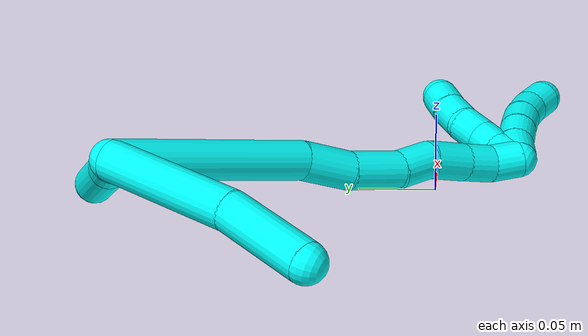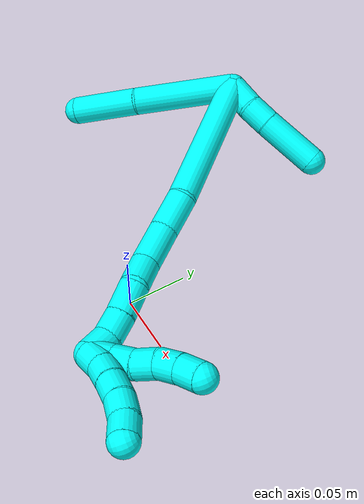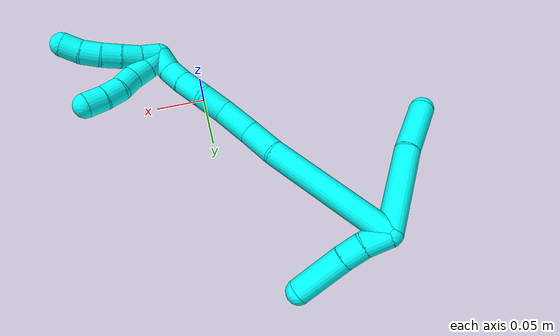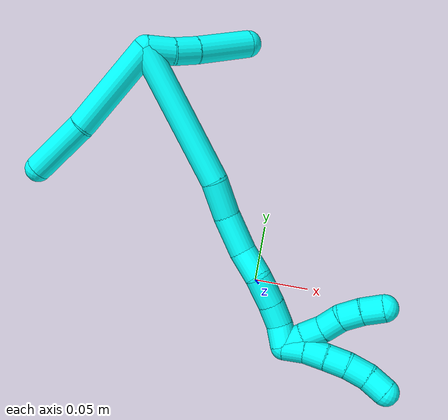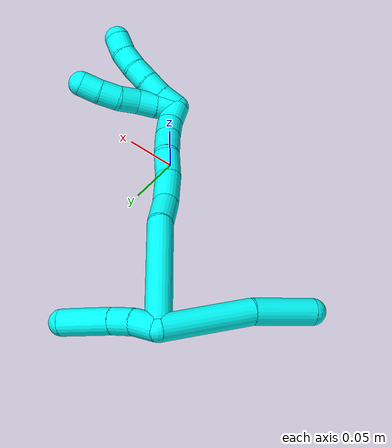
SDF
<sdf version="1.7">
 <world name="default">
  <model name="3">
   <static>0</static>
   <link name="3">
    <collision name="collision-cylinder-e_1_2_8">
     <pose>-0.011211 0.00266 -0.043626 -3.0807 -0.251078 2.66803</pose>
     <geometry><cylinder><radius>0.0125</radius><length>0.090244</length></cylinder></geometry>
     <surface>
      <friction><ode><mu>1.16</mu><mu2>1.16</mu2><slip1>0</slip1><slip2>0</slip2></ode></friction>
      <contact><ode><kp>1e+06</kp><kd>1</kd><max_vel>0</max_vel><min_depth>0.001</min_depth></ode></contact>
     </surface>
    </collision>
    <visual name="visual-cylinder-e_1_2_8">
     <pose>-0.011211 0.00266 -0.043626 -3.0807 -0.251078 2.66803</pose>
     <geometry><cylinder><radius>0.0125</radius><length>0.090244</length></cylinder></geometry>
     <material><ambient>0.003922 1 0.996078 1</ambient></material>
    </visual>
    <collision name="collision-cylinder-e_2_8_6">
     <pose>-0.029993 0.012073 -0.115355 -2.90572 -0.25621 1.65426</pose>
     <geometry><cylinder><radius>0.0125</radius><length>0.059756</length></cylinder></geometry>
     <surface>
      <friction><ode><mu>1.16</mu><mu2>1.16</mu2><slip1>0</slip1><slip2>0</slip2></ode></friction>
      <contact><ode><kp>1e+06</kp><kd>1</kd><max_vel>0</max_vel><min_depth>0.001</min_depth></ode></contact>
     </surface>
    </collision>
    <visual name="visual-cylinder-e_2_8_6">
     <pose>-0.029993 0.012073 -0.115355 -2.90572 -0.25621 1.65426</pose>
     <geometry><cylinder><radius>0.0125</radius><length>0.059756</length></cylinder></geometry>
     <material><ambient>0.003922 1 0.996078 1</ambient></material>
    </visual>
    <collision name="collision-cylinder-e_1_2_9">
     <pose>0.011606 -0.002674 0.004135 0.574152 1.16954 0.386023</pose>
     <geometry><cylinder><radius>0.0125</radius><length>0.025215</length></cylinder></geometry>
     <surface>
      <friction><ode><mu>1.16</mu><mu2>1.16</mu2><slip1>0</slip1><slip2>0</slip2></ode></friction>
      <contact><ode><kp>1e+06</kp><kd>1</kd><max_vel>0</max_vel><min_depth>0.001</min_depth></ode></contact>
     </surface>
    </collision>
    <visual name="visual-cylinder-e_1_2_9">
     <pose>0.011606 -0.002674 0.004135 0.574152 1.16954 0.386023</pose>
     <geometry><cylinder><radius>0.0125</radius><length>0.025215</length></cylinder></geometry>
     <material><ambient>0.003922 1 0.996078 1</ambient></material>
    </visual>
    <collision name="collision-cylinder-e_2_9_10">
     <pose>0.03331 -0.005956 0.012986 0.128088 1.13062 0.081322</pose>
     <geometry><cylinder><radius>0.0125</radius><length>0.022324</length></cylinder></geometry>
     <surface>
      <friction><ode><mu>1.16</mu><mu2>1.16</mu2><slip1>0</slip1><slip2>0</slip2></ode></friction>
      <contact><ode><kp>1e+06</kp><kd>1</kd><max_vel>0</max_vel><min_depth>0.001</min_depth></ode></contact>
     </surface>
    </collision>
    <visual name="visual-cylinder-e_2_9_10">
     <pose>0.03331 -0.005956 0.012986 0.128088 1.13062 0.081322</pose>
     <geometry><cylinder><radius>0.0125</radius><length>0.022324</length></cylinder></geometry>
     <material><ambient>0.003922 1 0.996078 1</ambient></material>
    </visual>
    <collision name="collision-cylinder-e_3_10_5">
     <pose>0.066685 -0.00646 0.029795 -0.008637 1.0917 -0.005246</pose>
     <geometry><cylinder><radius>0.0125</radius><length>0.052461</length></cylinder></geometry>
     <surface>
      <friction><ode><mu>1.16</mu><mu2>1.16</mu2><slip1>0</slip1><slip2>0</slip2></ode></friction>
      <contact><ode><kp>1e+06</kp><kd>1</kd><max_vel>0</max_vel><min_depth>0.001</min_depth></ode></contact>
     </surface>
    </collision>
    <visual name="visual-cylinder-e_3_10_5">
     <pose>0.066685 -0.00646 0.029795 -0.008637 1.0917 -0.005246</pose>
     <geometry><cylinder><radius>0.0125</radius><length>0.052461</length></cylinder></geometry>
     <material><ambient>0.003922 1 0.996078 1</ambient></material>
    </visual>
    <collision name="collision-cylinder-e_1_2_11">
     <pose>0.040907 -0.035848 -0.037293 2.37594 0.669109 1.42426</pose>
     <geometry><cylinder><radius>0.0125</radius><length>0.131898</length></cylinder></geometry>
     <surface>
      <friction><ode><mu>1.16</mu><mu2>1.16</mu2><slip1>0</slip1><slip2>0</slip2></ode></friction>
      <contact><ode><kp>1e+06</kp><kd>1</kd><max_vel>0</max_vel><min_depth>0.001</min_depth></ode></contact>
     </surface>
    </collision>
    <visual name="visual-cylinder-e_1_2_11">
     <pose>0.040907 -0.035848 -0.037293 2.37594 0.669109 1.42426</pose>
     <geometry><cylinder><radius>0.0125</radius><length>0.131898</length></cylinder></geometry>
     <material><ambient>0.003922 1 0.996078 1</ambient></material>
    </visual>
    <collision name="collision-cylinder-e_2_11_12">
     <pose>0.092288 -0.078055 -0.086444 2.64942 0.661414 1.87832</pose>
     <geometry><cylinder><radius>0.0125</radius><length>0.034104</length></cylinder></geometry>
     <surface>
      <friction><ode><mu>1.16</mu><mu2>1.16</mu2><slip1>0</slip1><slip2>0</slip2></ode></friction>
      <contact><ode><kp>1e+06</kp><kd>1</kd><max_vel>0</max_vel><min_depth>0.001</min_depth></ode></contact>
     </surface>
    </collision>
    <visual name="visual-cylinder-e_2_11_12">
     <pose>0.092288 -0.078055 -0.086444 2.64942 0.661414 1.87832</pose>
     <geometry><cylinder><radius>0.0125</radius><length>0.034104</length></cylinder></geometry>
     <material><ambient>0.003922 1 0.996078 1</ambient></material>
    </visual>
    <collision name="collision-cylinder-e_3_12_13">
     <pose>0.113317 -0.094583 -0.109449 2.40203 0.610437 1.36503</pose>
     <geometry><cylinder><radius>0.0125</radius><length>0.036826</length></cylinder></geometry>
     <surface>
      <friction><ode><mu>1.16</mu><mu2>1.16</mu2><slip1>0</slip1><slip2>0</slip2></ode></friction>
      <contact><ode><kp>1e+06</kp><kd>1</kd><max_vel>0</max_vel><min_depth>0.001</min_depth></ode></contact>
     </surface>
    </collision>
    <visual name="visual-cylinder-e_3_12_13">
     <pose>0.113317 -0.094583 -0.109449 2.40203 0.610437 1.36503</pose>
     <geometry><cylinder><radius>0.0125</radius><length>0.036826</length></cylinder></geometry>
     <material><ambient>0.003922 1 0.996078 1</ambient></material>
    </visual>
    <collision name="collision-cylinder-e_4_13_14">
     <pose>0.130643 -0.114577 -0.126544 2.11519 0.532665 0.901669</pose>
     <geometry><cylinder><radius>0.0125</radius><length>0.026667</length></cylinder></geometry>
     <surface>
      <friction><ode><mu>1.16</mu><mu2>1.16</mu2><slip1>0</slip1><slip2>0</slip2></ode></friction>
      <contact><ode><kp>1e+06</kp><kd>1</kd><max_vel>0</max_vel><min_depth>0.001</min_depth></ode></contact>
     </surface>
    </collision>
    <visual name="visual-cylinder-e_4_13_14">
     <pose>0.130643 -0.114577 -0.126544 2.11519 0.532665 0.901669</pose>
     <geometry><cylinder><radius>0.0125</radius><length>0.026667</length></cylinder></geometry>
     <material><ambient>0.003922 1 0.996078 1</ambient></material>
    </visual>
    <collision name="collision-cylinder-e_5_14_15">
     <pose>0.146355 -0.131294 -0.140852 2.45213 0.690002 1.57165</pose>
     <geometry><cylinder><radius>0.0125</radius><length>0.028093</length></cylinder></geometry>
     <surface>
      <friction><ode><mu>1.16</mu><mu2>1.16</mu2><slip1>0</slip1><slip2>0</slip2></ode></friction>
      <contact><ode><kp>1e+06</kp><kd>1</kd><max_vel>0</max_vel><min_depth>0.001</min_depth></ode></contact>
     </surface>
    </collision>
    <visual name="visual-cylinder-e_5_14_15">
     <pose>0.146355 -0.131294 -0.140852 2.45213 0.690002 1.57165</pose>
     <geometry><cylinder><radius>0.0125</radius><length>0.028093</length></cylinder></geometry>
     <material><ambient>0.003922 1 0.996078 1</ambient></material>
    </visual>
    <collision name="collision-cylinder-e_6_15_16">
     <pose>0.161567 -0.143694 -0.156217 2.47528 0.61311 1.48174</pose>
     <geometry><cylinder><radius>0.0125</radius><length>0.021794</length></cylinder></geometry>
     <surface>
      <friction><ode><mu>1.16</mu><mu2>1.16</mu2><slip1>0</slip1><slip2>0</slip2></ode></friction>
      <contact><ode><kp>1e+06</kp><kd>1</kd><max_vel>0</max_vel><min_depth>0.001</min_depth></ode></contact>
     </surface>
    </collision>
    <visual name="visual-cylinder-e_6_15_16">
     <pose>0.161567 -0.143694 -0.156217 2.47528 0.61311 1.48174</pose>
     <geometry><cylinder><radius>0.0125</radius><length>0.021794</length></cylinder></geometry>
     <material><ambient>0.003922 1 0.996078 1</ambient></material>
    </visual>
    <collision name="collision-cylinder-e_7_16_1">
     <pose>0.17083 -0.155846 -0.170515 2.40267 0.294589 0.731775</pose>
     <geometry><cylinder><radius>0.0125</radius><length>0.020619</length></cylinder></geometry>
     <surface>
      <friction><ode><mu>1.16</mu><mu2>1.16</mu2><slip1>0</slip1><slip2>0</slip2></ode></friction>
      <contact><ode><kp>1e+06</kp><kd>1</kd><max_vel>0</max_vel><min_depth>0.001</min_depth></ode></contact>
     </surface>
    </collision>
    <visual name="visual-cylinder-e_7_16_1">
     <pose>0.17083 -0.155846 -0.170515 2.40267 0.294589 0.731775</pose>
     <geometry><cylinder><radius>0.0125</radius><length>0.020619</length></cylinder></geometry>
     <material><ambient>0.003922 1 0.996078 1</ambient></material>
    </visual>
    <collision name="collision-cylinder-e_1_1_17">
     <pose>0.179757 -0.16928 -0.173484 1.00375 0.635268 0.356976</pose>
     <geometry><cylinder><radius>0.0125</radius><length>0.02</length></cylinder></geometry>
     <surface>
      <friction><ode><mu>1.16</mu><mu2>1.16</mu2><slip1>0</slip1><slip2>0</slip2></ode></friction>
      <contact><ode><kp>1e+06</kp><kd>1</kd><max_vel>0</max_vel><min_depth>0.001</min_depth></ode></contact>
     </surface>
    </collision>
    <visual name="visual-cylinder-e_1_1_17">
     <pose>0.179757 -0.16928 -0.173484 1.00375 0.635268 0.356976</pose>
     <geometry><cylinder><radius>0.0125</radius><length>0.02</length></cylinder></geometry>
     <material><ambient>0.003922 1 0.996078 1</ambient></material>
    </visual>
    <collision name="collision-cylinder-e_2_17_18">
     <pose>0.191509 -0.183745 -0.166471 1.23382 0.620948 0.44751</pose>
     <geometry><cylinder><radius>0.0125</radius><length>0.02</length></cylinder></geometry>
     <surface>
      <friction><ode><mu>1.16</mu><mu2>1.16</mu2><slip1>0</slip1><slip2>0</slip2></ode></friction>
      <contact><ode><kp>1e+06</kp><kd>1</kd><max_vel>0</max_vel><min_depth>0.001</min_depth></ode></contact>
     </surface>
    </collision>
    <visual name="visual-cylinder-e_2_17_18">
     <pose>0.191509 -0.183745 -0.166471 1.23382 0.620948 0.44751</pose>
     <geometry><cylinder><radius>0.0125</radius><length>0.02</length></cylinder></geometry>
     <material><ambient>0.003922 1 0.996078 1</ambient></material>
    </visual>
    <collision name="collision-cylinder-e_3_18_19">
     <pose>0.203733 -0.198793 -0.161632 1.28706 0.69521 0.53069</pose>
     <geometry><cylinder><radius>0.0125</radius><length>0.02</length></cylinder></geometry>
     <surface>
      <friction><ode><mu>1.16</mu><mu2>1.16</mu2><slip1>0</slip1><slip2>0</slip2></ode></friction>
      <contact><ode><kp>1e+06</kp><kd>1</kd><max_vel>0</max_vel><min_depth>0.001</min_depth></ode></contact>
     </surface>
    </collision>
    <visual name="visual-cylinder-e_3_18_19">
     <pose>0.203733 -0.198793 -0.161632 1.28706 0.69521 0.53069</pose>
     <geometry><cylinder><radius>0.0125</radius><length>0.02</length></cylinder></geometry>
     <material><ambient>0.003922 1 0.996078 1</ambient></material>
    </visual>
    <collision name="collision-cylinder-e_4_19_20">
     <pose>0.216942 -0.213477 -0.158984 1.50279 0.748312 0.703154</pose>
     <geometry><cylinder><radius>0.0125</radius><length>0.02</length></cylinder></geometry>
     <surface>
      <friction><ode><mu>1.16</mu><mu2>1.16</mu2><slip1>0</slip1><slip2>0</slip2></ode></friction>
      <contact><ode><kp>1e+06</kp><kd>1</kd><max_vel>0</max_vel><min_depth>0.001</min_depth></ode></contact>
     </surface>
    </collision>
    <visual name="visual-cylinder-e_4_19_20">
     <pose>0.216942 -0.213477 -0.158984 1.50279 0.748312 0.703154</pose>
     <geometry><cylinder><radius>0.0125</radius><length>0.02</length></cylinder></geometry>
     <material><ambient>0.003922 1 0.996078 1</ambient></material>
    </visual>
    <collision name="collision-cylinder-e_5_20_4">
     <pose>0.229648 -0.228733 -0.15992 1.74935 0.631245 0.745008</pose>
     <geometry><cylinder><radius>0.0125</radius><length>0.02</length></cylinder></geometry>
     <surface>
      <friction><ode><mu>1.16</mu><mu2>1.16</mu2><slip1>0</slip1><slip2>0</slip2></ode></friction>
      <contact><ode><kp>1e+06</kp><kd>1</kd><max_vel>0</max_vel><min_depth>0.001</min_depth></ode></contact>
     </surface>
    </collision>
    <visual name="visual-cylinder-e_5_20_4">
     <pose>0.229648 -0.228733 -0.15992 1.74935 0.631245 0.745008</pose>
     <geometry><cylinder><radius>0.0125</radius><length>0.02</length></cylinder></geometry>
     <material><ambient>0.003922 1 0.996078 1</ambient></material>
    </visual>
    <collision name="collision-cylinder-e_1_1_21">
     <pose>0.179044 -0.164662 -0.169559 0.257389 0.549297 0.072895</pose>
     <geometry><cylinder><radius>0.0125</radius><length>0.02</length></cylinder></geometry>
     <surface>
      <friction><ode><mu>1.16</mu><mu2>1.16</mu2><slip1>0</slip1><slip2>0</slip2></ode></friction>
      <contact><ode><kp>1e+06</kp><kd>1</kd><max_vel>0</max_vel><min_depth>0.001</min_depth></ode></contact>
     </surface>
    </collision>
    <visual name="visual-cylinder-e_1_1_21">
     <pose>0.179044 -0.164662 -0.169559 0.257389 0.549297 0.072895</pose>
     <geometry><cylinder><radius>0.0125</radius><length>0.02</length></cylinder></geometry>
     <material><ambient>0.003922 1 0.996078 1</ambient></material>
    </visual>
    <collision name="collision-cylinder-e_2_21_22">
     <pose>0.188774 -0.170639 -0.153238 0.440538 0.4678 0.106593</pose>
     <geometry><cylinder><radius>0.0125</radius><length>0.02</length></cylinder></geometry>
     <surface>
      <friction><ode><mu>1.16</mu><mu2>1.16</mu2><slip1>0</slip1><slip2>0</slip2></ode></friction>
      <contact><ode><kp>1e+06</kp><kd>1</kd><max_vel>0</max_vel><min_depth>0.001</min_depth></ode></contact>
     </surface>
    </collision>
    <visual name="visual-cylinder-e_2_21_22">
     <pose>0.188774 -0.170639 -0.153238 0.440538 0.4678 0.106593</pose>
     <geometry><cylinder><radius>0.0125</radius><length>0.02</length></cylinder></geometry>
     <material><ambient>0.003922 1 0.996078 1</ambient></material>
    </visual>
    <collision name="collision-cylinder-e_3_22_23">
     <pose>0.195828 -0.177676 -0.136049 0.340629 0.257215 0.044474</pose>
     <geometry><cylinder><radius>0.0125</radius><length>0.02</length></cylinder></geometry>
     <surface>
      <friction><ode><mu>1.16</mu><mu2>1.16</mu2><slip1>0</slip1><slip2>0</slip2></ode></friction>
      <contact><ode><kp>1e+06</kp><kd>1</kd><max_vel>0</max_vel><min_depth>0.001</min_depth></ode></contact>
     </surface>
    </collision>
    <visual name="visual-cylinder-e_3_22_23">
     <pose>0.195828 -0.177676 -0.136049 0.340629 0.257215 0.044474</pose>
     <geometry><cylinder><radius>0.0125</radius><length>0.02</length></cylinder></geometry>
     <material><ambient>0.003922 1 0.996078 1</ambient></material>
    </visual>
    <collision name="collision-cylinder-e_4_23_24">
     <pose>0.202863 -0.185537 -0.119292 0.54474 0.465801 0.132315</pose>
     <geometry><cylinder><radius>0.0125</radius><length>0.02</length></cylinder></geometry>
     <surface>
      <friction><ode><mu>1.16</mu><mu2>1.16</mu2><slip1>0</slip1><slip2>0</slip2></ode></friction>
      <contact><ode><kp>1e+06</kp><kd>1</kd><max_vel>0</max_vel><min_depth>0.001</min_depth></ode></contact>
     </surface>
    </collision>
    <visual name="visual-cylinder-e_4_23_24">
     <pose>0.202863 -0.185537 -0.119292 0.54474 0.465801 0.132315</pose>
     <geometry><cylinder><radius>0.0125</radius><length>0.02</length></cylinder></geometry>
     <material><ambient>0.003922 1 0.996078 1</ambient></material>
    </visual>
    <collision name="collision-cylinder-e_5_24_3">
     <pose>0.212514 -0.195551 -0.104989 0.679779 0.54215 0.19592</pose>
     <geometry><cylinder><radius>0.0125</radius><length>0.02</length></cylinder></geometry>
     <surface>
      <friction><ode><mu>1.16</mu><mu2>1.16</mu2><slip1>0</slip1><slip2>0</slip2></ode></friction>
      <contact><ode><kp>1e+06</kp><kd>1</kd><max_vel>0</max_vel><min_depth>0.001</min_depth></ode></contact>
     </surface>
    </collision>
    <visual name="visual-cylinder-e_5_24_3">
     <pose>0.212514 -0.195551 -0.104989 0.679779 0.54215 0.19592</pose>
     <geometry><cylinder><radius>0.0125</radius><length>0.02</length></cylinder></geometry>
     <material><ambient>0.003922 1 0.996078 1</ambient></material>
    </visual>
    <collision name="collision-sphere-3">
     <pose>0.217674 -0.200936 -0.098327 0 -0 0</pose>
     <geometry><sphere><radius>0.0125</radius></sphere></geometry>
     <surface>
      <friction><ode><mu>1.16</mu><mu2>1.16</mu2><slip1>0</slip1><slip2>0</slip2></ode></friction>
      <contact><ode><kp>1e+06</kp><kd>1</kd><max_vel>0</max_vel><min_depth>0.001</min_depth></ode></contact>
     </surface>
    </collision>
    <visual name="visual-sphere-3">
     <pose>0.217674 -0.200936 -0.098327 0 -0 0</pose>
     <geometry><sphere><radius>0.0125</radius></sphere></geometry>
     <material><ambient>0.003922 1 0.996078 1</ambient></material>
    </visual>
    <collision name="collision-sphere-24">
     <pose>0.207354 -0.190167 -0.111651 0 -0 0</pose>
     <geometry><sphere><radius>0.0125</radius></sphere></geometry>
     <surface>
      <friction><ode><mu>1.16</mu><mu2>1.16</mu2><slip1>0</slip1><slip2>0</slip2></ode></friction>
      <contact><ode><kp>1e+06</kp><kd>1</kd><max_vel>0</max_vel><min_depth>0.001</min_depth></ode></contact>
     </surface>
    </collision>
    <visual name="visual-sphere-24">
     <pose>0.207354 -0.190167 -0.111651 0 -0 0</pose>
     <geometry><sphere><radius>0.0125</radius></sphere></geometry>
     <material><ambient>0.003922 1 0.996078 1</ambient></material>
    </visual>
    <collision name="collision-sphere-23">
     <pose>0.198371 -0.180907 -0.126934 0 -0 0</pose>
     <geometry><sphere><radius>0.0125</radius></sphere></geometry>
     <surface>
      <friction><ode><mu>1.16</mu><mu2>1.16</mu2><slip1>0</slip1><slip2>0</slip2></ode></friction>
      <contact><ode><kp>1e+06</kp><kd>1</kd><max_vel>0</max_vel><min_depth>0.001</min_depth></ode></contact>
     </surface>
    </collision>
    <visual name="visual-sphere-23">
     <pose>0.198371 -0.180907 -0.126934 0 -0 0</pose>
     <geometry><sphere><radius>0.0125</radius></sphere></geometry>
     <material><ambient>0.003922 1 0.996078 1</ambient></material>
    </visual>
    <collision name="collision-sphere-22">
     <pose>0.193284 -0.174445 -0.145164 0 -0 0</pose>
     <geometry><sphere><radius>0.0125</radius></sphere></geometry>
     <surface>
      <friction><ode><mu>1.16</mu><mu2>1.16</mu2><slip1>0</slip1><slip2>0</slip2></ode></friction>
      <contact><ode><kp>1e+06</kp><kd>1</kd><max_vel>0</max_vel><min_depth>0.001</min_depth></ode></contact>
     </surface>
    </collision>
    <visual name="visual-sphere-22">
     <pose>0.193284 -0.174445 -0.145164 0 -0 0</pose>
     <geometry><sphere><radius>0.0125</radius></sphere></geometry>
     <material><ambient>0.003922 1 0.996078 1</ambient></material>
    </visual>
    <collision name="collision-sphere-21">
     <pose>0.184265 -0.166833 -0.161311 0 -0 0</pose>
     <geometry><sphere><radius>0.0125</radius></sphere></geometry>
     <surface>
      <friction><ode><mu>1.16</mu><mu2>1.16</mu2><slip1>0</slip1><slip2>0</slip2></ode></friction>
      <contact><ode><kp>1e+06</kp><kd>1</kd><max_vel>0</max_vel><min_depth>0.001</min_depth></ode></contact>
     </surface>
    </collision>
    <visual name="visual-sphere-21">
     <pose>0.184265 -0.166833 -0.161311 0 -0 0</pose>
     <geometry><sphere><radius>0.0125</radius></sphere></geometry>
     <material><ambient>0.003922 1 0.996078 1</ambient></material>
    </visual>
    <collision name="collision-sphere-4">
     <pose>0.235549 -0.236677 -0.161354 0 -0 0</pose>
     <geometry><sphere><radius>0.0125</radius></sphere></geometry>
     <surface>
      <friction><ode><mu>1.16</mu><mu2>1.16</mu2><slip1>0</slip1><slip2>0</slip2></ode></friction>
      <contact><ode><kp>1e+06</kp><kd>1</kd><max_vel>0</max_vel><min_depth>0.001</min_depth></ode></contact>
     </surface>
    </collision>
    <visual name="visual-sphere-4">
     <pose>0.235549 -0.236677 -0.161354 0 -0 0</pose>
     <geometry><sphere><radius>0.0125</radius></sphere></geometry>
     <material><ambient>0.003922 1 0.996078 1</ambient></material>
    </visual>
    <collision name="collision-sphere-20">
     <pose>0.223746 -0.220788 -0.158486 0 -0 0</pose>
     <geometry><sphere><radius>0.0125</radius></sphere></geometry>
     <surface>
      <friction><ode><mu>1.16</mu><mu2>1.16</mu2><slip1>0</slip1><slip2>0</slip2></ode></friction>
      <contact><ode><kp>1e+06</kp><kd>1</kd><max_vel>0</max_vel><min_depth>0.001</min_depth></ode></contact>
     </surface>
    </collision>
    <visual name="visual-sphere-20">
     <pose>0.223746 -0.220788 -0.158486 0 -0 0</pose>
     <geometry><sphere><radius>0.0125</radius></sphere></geometry>
     <material><ambient>0.003922 1 0.996078 1</ambient></material>
    </visual>
    <collision name="collision-sphere-5">
     <pose>0.089963 -0.006355 0.041886 0 -0 0</pose>
     <geometry><sphere><radius>0.0125</radius></sphere></geometry>
     <surface>
      <friction><ode><mu>1.16</mu><mu2>1.16</mu2><slip1>0</slip1><slip2>0</slip2></ode></friction>
      <contact><ode><kp>1e+06</kp><kd>1</kd><max_vel>0</max_vel><min_depth>0.001</min_depth></ode></contact>
     </surface>
    </collision>
    <visual name="visual-sphere-5">
     <pose>0.089963 -0.006355 0.041886 0 -0 0</pose>
     <geometry><sphere><radius>0.0125</radius></sphere></geometry>
     <material><ambient>0.003922 1 0.996078 1</ambient></material>
    </visual>
    <collision name="collision-sphere-10">
     <pose>0.043408 -0.006564 0.017704 0 -0 0</pose>
     <geometry><sphere><radius>0.0125</radius></sphere></geometry>
     <surface>
      <friction><ode><mu>1.16</mu><mu2>1.16</mu2><slip1>0</slip1><slip2>0</slip2></ode></friction>
      <contact><ode><kp>1e+06</kp><kd>1</kd><max_vel>0</max_vel><min_depth>0.001</min_depth></ode></contact>
     </surface>
    </collision>
    <visual name="visual-sphere-10">
     <pose>0.043408 -0.006564 0.017704 0 -0 0</pose>
     <geometry><sphere><radius>0.0125</radius></sphere></geometry>
     <material><ambient>0.003922 1 0.996078 1</ambient></material>
    </visual>
    <collision name="collision-sphere-6">
     <pose>-0.037564 0.018828 -0.143457 0 -0 0</pose>
     <geometry><sphere><radius>0.0125</radius></sphere></geometry>
     <surface>
      <friction><ode><mu>1.16</mu><mu2>1.16</mu2><slip1>0</slip1><slip2>0</slip2></ode></friction>
      <contact><ode><kp>1e+06</kp><kd>1</kd><max_vel>0</max_vel><min_depth>0.001</min_depth></ode></contact>
     </surface>
    </collision>
    <visual name="visual-sphere-6">
     <pose>-0.037564 0.018828 -0.143457 0 -0 0</pose>
     <geometry><sphere><radius>0.0125</radius></sphere></geometry>
     <material><ambient>0.003922 1 0.996078 1</ambient></material>
    </visual>
    <collision name="collision-sphere-9">
     <pose>0.023212 -0.005349 0.008269 0 -0 0</pose>
     <geometry><sphere><radius>0.0125</radius></sphere></geometry>
     <surface>
      <friction><ode><mu>1.16</mu><mu2>1.16</mu2><slip1>0</slip1><slip2>0</slip2></ode></friction>
      <contact><ode><kp>1e+06</kp><kd>1</kd><max_vel>0</max_vel><min_depth>0.001</min_depth></ode></contact>
     </surface>
    </collision>
    <visual name="visual-sphere-9">
     <pose>0.023212 -0.005349 0.008269 0 -0 0</pose>
     <geometry><sphere><radius>0.0125</radius></sphere></geometry>
     <material><ambient>0.003922 1 0.996078 1</ambient></material>
    </visual>
    <collision name="collision-sphere-2">
     <geometry><sphere><radius>0.0125</radius></sphere></geometry>
     <surface>
      <friction><ode><mu>1.16</mu><mu2>1.16</mu2><slip1>0</slip1><slip2>0</slip2></ode></friction>
      <contact><ode><kp>1e+06</kp><kd>1</kd><max_vel>0</max_vel><min_depth>0.001</min_depth></ode></contact>
     </surface>
    </collision>
    <visual name="visual-sphere-2">
     <geometry><sphere><radius>0.0125</radius></sphere></geometry>
     <material><ambient>0.003922 1 0.996078 1</ambient></material>
    </visual>
    <collision name="collision-sphere-19">
     <pose>0.210138 -0.206165 -0.159482 0 -0 0</pose>
     <geometry><sphere><radius>0.0125</radius></sphere></geometry>
     <surface>
      <friction><ode><mu>1.16</mu><mu2>1.16</mu2><slip1>0</slip1><slip2>0</slip2></ode></friction>
      <contact><ode><kp>1e+06</kp><kd>1</kd><max_vel>0</max_vel><min_depth>0.001</min_depth></ode></contact>
     </surface>
    </collision>
    <visual name="visual-sphere-19">
     <pose>0.210138 -0.206165 -0.159482 0 -0 0</pose>
     <geometry><sphere><radius>0.0125</radius></sphere></geometry>
     <material><ambient>0.003922 1 0.996078 1</ambient></material>
    </visual>
    <collision name="collision-sphere-8">
     <pose>-0.022421 0.005319 -0.087253 0 -0 0</pose>
     <geometry><sphere><radius>0.0125</radius></sphere></geometry>
     <surface>
      <friction><ode><mu>1.16</mu><mu2>1.16</mu2><slip1>0</slip1><slip2>0</slip2></ode></friction>
      <contact><ode><kp>1e+06</kp><kd>1</kd><max_vel>0</max_vel><min_depth>0.001</min_depth></ode></contact>
     </surface>
    </collision>
    <visual name="visual-sphere-8">
     <pose>-0.022421 0.005319 -0.087253 0 -0 0</pose>
     <geometry><sphere><radius>0.0125</radius></sphere></geometry>
     <material><ambient>0.003922 1 0.996078 1</ambient></material>
    </visual>
    <collision name="collision-sphere-11">
     <pose>0.081814 -0.071697 -0.074585 0 -0 0</pose>
     <geometry><sphere><radius>0.0125</radius></sphere></geometry>
     <surface>
      <friction><ode><mu>1.16</mu><mu2>1.16</mu2><slip1>0</slip1><slip2>0</slip2></ode></friction>
      <contact><ode><kp>1e+06</kp><kd>1</kd><max_vel>0</max_vel><min_depth>0.001</min_depth></ode></contact>
     </surface>
    </collision>
    <visual name="visual-sphere-11">
     <pose>0.081814 -0.071697 -0.074585 0 -0 0</pose>
     <geometry><sphere><radius>0.0125</radius></sphere></geometry>
     <material><ambient>0.003922 1 0.996078 1</ambient></material>
    </visual>
    <collision name="collision-sphere-12">
     <pose>0.102762 -0.084414 -0.098303 0 -0 0</pose>
     <geometry><sphere><radius>0.0125</radius></sphere></geometry>
     <surface>
      <friction><ode><mu>1.16</mu><mu2>1.16</mu2><slip1>0</slip1><slip2>0</slip2></ode></friction>
      <contact><ode><kp>1e+06</kp><kd>1</kd><max_vel>0</max_vel><min_depth>0.001</min_depth></ode></contact>
     </surface>
    </collision>
    <visual name="visual-sphere-12">
     <pose>0.102762 -0.084414 -0.098303 0 -0 0</pose>
     <geometry><sphere><radius>0.0125</radius></sphere></geometry>
     <material><ambient>0.003922 1 0.996078 1</ambient></material>
    </visual>
    <collision name="collision-sphere-13">
     <pose>0.123872 -0.104751 -0.120596 0 -0 0</pose>
     <geometry><sphere><radius>0.0125</radius></sphere></geometry>
     <surface>
      <friction><ode><mu>1.16</mu><mu2>1.16</mu2><slip1>0</slip1><slip2>0</slip2></ode></friction>
      <contact><ode><kp>1e+06</kp><kd>1</kd><max_vel>0</max_vel><min_depth>0.001</min_depth></ode></contact>
     </surface>
    </collision>
    <visual name="visual-sphere-13">
     <pose>0.123872 -0.104751 -0.120596 0 -0 0</pose>
     <geometry><sphere><radius>0.0125</radius></sphere></geometry>
     <material><ambient>0.003922 1 0.996078 1</ambient></material>
    </visual>
    <collision name="collision-sphere-14">
     <pose>0.137414 -0.124403 -0.132493 0 -0 0</pose>
     <geometry><sphere><radius>0.0125</radius></sphere></geometry>
     <surface>
      <friction><ode><mu>1.16</mu><mu2>1.16</mu2><slip1>0</slip1><slip2>0</slip2></ode></friction>
      <contact><ode><kp>1e+06</kp><kd>1</kd><max_vel>0</max_vel><min_depth>0.001</min_depth></ode></contact>
     </surface>
    </collision>
    <visual name="visual-sphere-14">
     <pose>0.137414 -0.124403 -0.132493 0 -0 0</pose>
     <geometry><sphere><radius>0.0125</radius></sphere></geometry>
     <material><ambient>0.003922 1 0.996078 1</ambient></material>
    </visual>
    <collision name="collision-sphere-15">
     <pose>0.155296 -0.138185 -0.149211 0 -0 0</pose>
     <geometry><sphere><radius>0.0125</radius></sphere></geometry>
     <surface>
      <friction><ode><mu>1.16</mu><mu2>1.16</mu2><slip1>0</slip1><slip2>0</slip2></ode></friction>
      <contact><ode><kp>1e+06</kp><kd>1</kd><max_vel>0</max_vel><min_depth>0.001</min_depth></ode></contact>
     </surface>
    </collision>
    <visual name="visual-sphere-15">
     <pose>0.155296 -0.138185 -0.149211 0 -0 0</pose>
     <geometry><sphere><radius>0.0125</radius></sphere></geometry>
     <material><ambient>0.003922 1 0.996078 1</ambient></material>
    </visual>
    <collision name="collision-sphere-16">
     <pose>0.167837 -0.149202 -0.163223 0 -0 0</pose>
     <geometry><sphere><radius>0.0125</radius></sphere></geometry>
     <surface>
      <friction><ode><mu>1.16</mu><mu2>1.16</mu2><slip1>0</slip1><slip2>0</slip2></ode></friction>
      <contact><ode><kp>1e+06</kp><kd>1</kd><max_vel>0</max_vel><min_depth>0.001</min_depth></ode></contact>
     </surface>
    </collision>
    <visual name="visual-sphere-16">
     <pose>0.167837 -0.149202 -0.163223 0 -0 0</pose>
     <geometry><sphere><radius>0.0125</radius></sphere></geometry>
     <material><ambient>0.003922 1 0.996078 1</ambient></material>
    </visual>
    <collision name="collision-sphere-1">
     <pose>0.173823 -0.162491 -0.177807 0 -0 0</pose>
     <geometry><sphere><radius>0.0125</radius></sphere></geometry>
     <surface>
      <friction><ode><mu>1.16</mu><mu2>1.16</mu2><slip1>0</slip1><slip2>0</slip2></ode></friction>
      <contact><ode><kp>1e+06</kp><kd>1</kd><max_vel>0</max_vel><min_depth>0.001</min_depth></ode></contact>
     </surface>
    </collision>
    <visual name="visual-sphere-1">
     <pose>0.173823 -0.162491 -0.177807 0 -0 0</pose>
     <geometry><sphere><radius>0.0125</radius></sphere></geometry>
     <material><ambient>0.003922 1 0.996078 1</ambient></material>
    </visual>
    <collision name="collision-sphere-18">
     <pose>0.197327 -0.191421 -0.163782 0 -0 0</pose>
     <geometry><sphere><radius>0.0125</radius></sphere></geometry>
     <surface>
      <friction><ode><mu>1.16</mu><mu2>1.16</mu2><slip1>0</slip1><slip2>0</slip2></ode></friction>
      <contact><ode><kp>1e+06</kp><kd>1</kd><max_vel>0</max_vel><min_depth>0.001</min_depth></ode></contact>
     </surface>
    </collision>
    <visual name="visual-sphere-18">
     <pose>0.197327 -0.191421 -0.163782 0 -0 0</pose>
     <geometry><sphere><radius>0.0125</radius></sphere></geometry>
     <material><ambient>0.003922 1 0.996078 1</ambient></material>
    </visual>
    <collision name="collision-sphere-17">
     <pose>0.185691 -0.176069 -0.16916 0 -0 0</pose>
     <geometry><sphere><radius>0.0125</radius></sphere></geometry>
     <surface>
      <friction><ode><mu>1.16</mu><mu2>1.16</mu2><slip1>0</slip1><slip2>0</slip2></ode></friction>
      <contact><ode><kp>1e+06</kp><kd>1</kd><max_vel>0</max_vel><min_depth>0.001</min_depth></ode></contact>
     </surface>
    </collision>
    <visual name="visual-sphere-17">
     <pose>0.185691 -0.176069 -0.16916 0 -0 0</pose>
     <geometry><sphere><radius>0.0125</radius></sphere></geometry>
     <material><ambient>0.003922 1 0.996078 1</ambient></material>
    </visual>
    <inertial>
     <pose>0.09213 -0.081736 -0.086793 0 -0 0</pose>
     <mass>0.75</mass>
     <inertia>
      <ixx>0.000232</ixx>
      <ixy>0</ixy>
      <ixz>0</ixz>
      <iyy>0.000355</iyy>
      <iyz>0</iyz>
      <izz>-3.2e-05</izz>
     </inertia>
    </inertial>
   </link>
   <pose>-0.136405 0.184785 0.0469 -1.19026 0.625106 -0.076787</pose>
  </model>
 </world>
</sdf>
